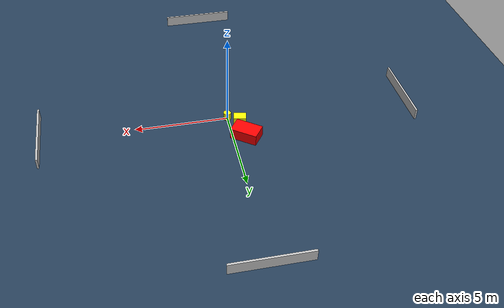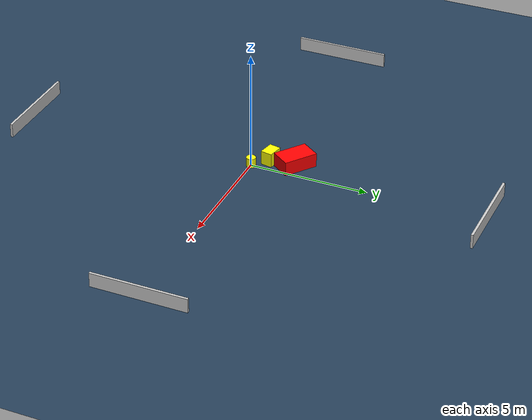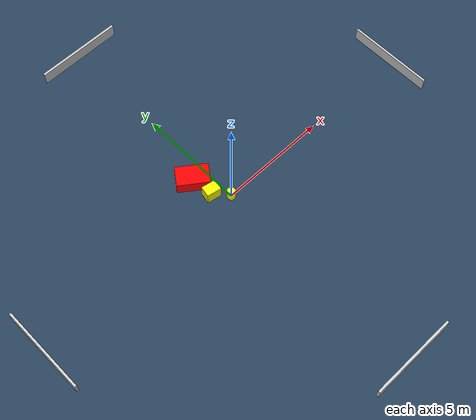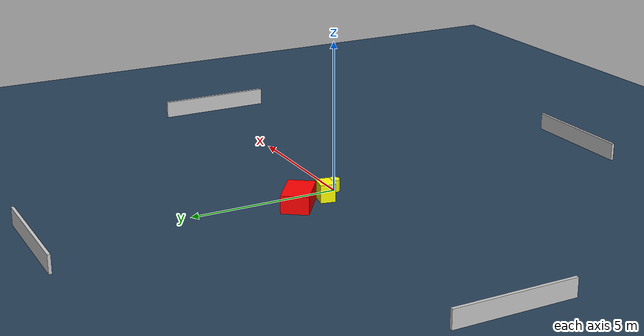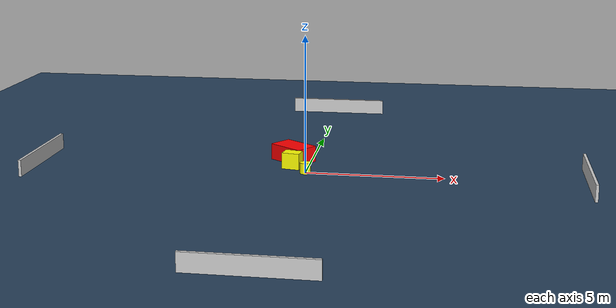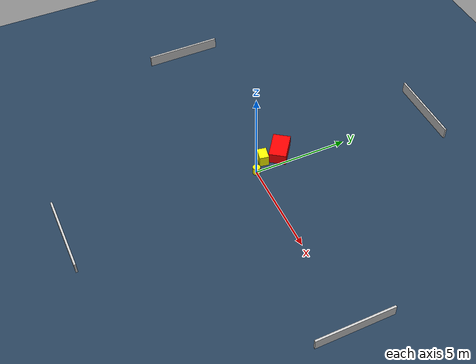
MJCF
<?xml version="1.0" ?>
<mujoco model="generated_environment">
  <option timestep="0.01" integrator="RK4" cone="elliptic"/>
  <default>
    <geom density="1"/>
  </default>
  <asset>
    <texture builtin="gradient" height="3072" name="skybox" rgb1="0.3 0.5 0.7" rgb2="0 0 0" type="skybox" width="512"/>
    <texture builtin="checker" height="300" name="groundplane" rgb1="0.2 0.3 0.4" rgb2="0.1 0.2 0.3" type="2d" width="300"/>
    <material name="groundplane" reflectance="0.2" texrepeat="5 5" texture="groundplane"/>
  </asset>
  <worldbody>
    <light dir="0 0 -1" directional="true" pos="0 0 1.5"/>
    <geom condim="3" friction="0.5 0.005 0.001" material="groundplane" name="floor" pos="0 0 0" size="0 0 0.05" type="plane"/>
    <body name="walls">
      <geom name="wall_1" condim="4" pos="-10.0 0.0 0.3" rgba="0.800000011920929 0.800000011920929 0.800000011920929 1.0" size="0.05 2.0 0.3" type="box"/>
      <geom name="wall_2" condim="4" pos="10.0 0.0 0.3" rgba="0.800000011920929 0.800000011920929 0.800000011920929 1.0" size="0.05 2.0 0.3" type="box"/>
      <geom name="wall_3" condim="4" pos="0.0 -10.0 0.3" rgba="0.800000011920929 0.800000011920929 0.800000011920929 1.0" size="2.0 0.05 0.3" type="box"/>
      <geom name="wall_4" condim="4" pos="0.0 10.0 0.3" rgba="0.800000011920929 0.800000011920929 0.800000011920929 1.0" size="2.0 0.05 0.3" type="box"/>
    </body>
    <body name="robot">
      <joint name="joint_x" type="slide" pos="0 0 0" axis="1 0 0"/>
      <joint name="joint_y" type="slide" pos="0 0 0" axis="0 1 0"/>
      <geom name="robot" type="cylinder" pos="0.0 0.0 0.2" size="0.2 0.2 0.0" mass="5.0" friction="1.0 0.005 0.0001" condim="4" rgba="1.0 1.0 0.0 1.0"/>
    </body>
    <body name="obstacle_1_movable">
      <geom name="obstacle_1_movable" condim="4" pos="-0.5688363983135564 0.6202281324626732 0.3" euler="0 0 258.94841819974823" friction="0.0 0.005 0.001" rgba="1.0 1.0 0.0 1.0" size="0.24539378220000274 0.3301844458984383 0.3" type="box" mass="0.1"/>
      <joint type="free"/>
    </body>
    <body name="obstacle_2_static">
      <geom name="obstacle_2_static" condim="4" pos="-0.6986543904127928 1.6418105807225045 0.3" euler="0 0 54.060548712755754" friction="0.0 0.005 0.001" rgba="1.0 0.0 0.0 1.0" size="0.45427977485160653 0.7274222506820038 0.3" type="box"/>
    </body>
  </worldbody>
  <actuator>
    <motor name="actuator_x" joint="joint_x" gear="1" ctrlrange="-1 1"/>
    <motor name="actuator_y" joint="joint_y" gear="1" ctrlrange="-1 1"/>
  </actuator>
</mujoco>
